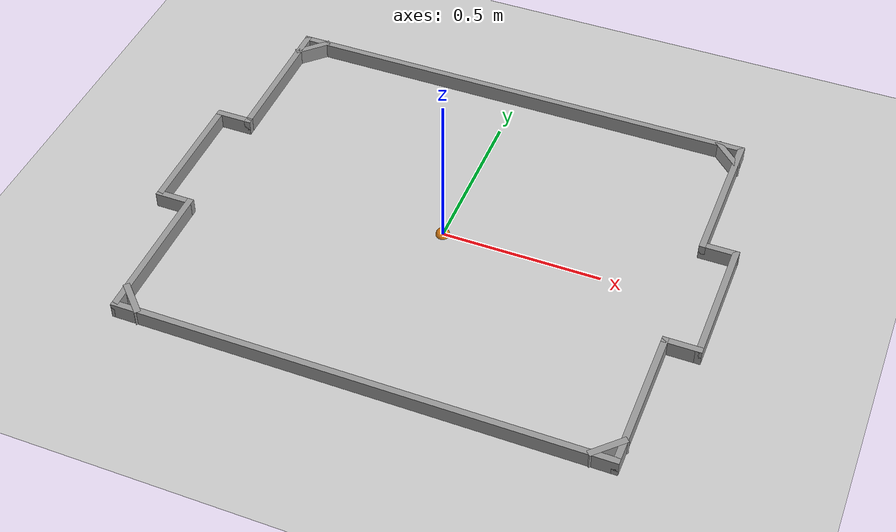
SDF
<?xml version='1.0'?>
<sdf version='1.4'>
  <world name='ieee_very_small_field'>
    <gui fullscreen='0'>
      <camera name='camera'>
        <pose>0 0 4.0 0 1.55 0</pose>
        <view_controller>orbit</view_controller>
      </camera>
    </gui>

    <include>
      <uri>model://sun</uri>
    </include>

    <include>
      <uri>model://ground_plane</uri>
    </include>

    <model name='ball'>
      <static>false</static>
      <pose>-0 0 0 0 0 0</pose>
      <link name='ball_link'>
        <collision name='ball_collision'>
          <geometry>
            <sphere>
              <radius>0.02135</radius>
            </sphere>
          </geometry>
        </collision>
        <visual name='ball_visual'>
          <geometry>
            <sphere>
              <radius>0.02135</radius>
            </sphere>
          </geometry>
          <material>
            <script>
              <uri>file://media/materials/scripts/gazebo.material</uri>
              <name>Gazebo/Orange</name>
            </script>
          </material>
        </visual>
        <inertial>
          <mass>0.046</mass>
          <inertia>
            <ixx>8.3e-6</ixx>
            <iyy>8.3e-6</iyy>
            <izz>8.3e-6</izz>
          </inertia>
        </inertial>
      </link>
    </model>

    <model name='field_walls'>
      <link name='Wall_11'>
        <collision name='Wall_11_Collision'>
          <geometry>
            <box>
              <size>0.47 0.02 0.05</size>
            </box>
          </geometry>
          <pose>0 0 0.025 0 -0 0</pose>
        </collision>
        <visual name='Wall_11_Visual'>
          <pose>0 0 0.025 0 -0 0</pose>
          <geometry>
            <box>
              <size>0.47 0.02 0.05</size>
            </box>
          </geometry>
          <material>
            <script>
              <uri>file://media/materials/scripts/gazebo.material</uri>
              <name>Gazebo/Grey</name>
            </script>
          </material>
        </visual>
        <velocity_decay>
          <linear>0</linear>
          <angular>0</angular>
        </velocity_decay>
        <pose>0.75 -0.425 0 0 -0 1.5708</pose>
      </link>
      <link name='Wall_13'>
        <collision name='Wall_13_Collision'>
          <geometry>
            <box>
              <size>0.118995 0.02 0.05</size>
            </box>
          </geometry>
          <pose>0 0 0.025 0 -0 0</pose>
        </collision>
        <visual name='Wall_13_Visual'>
          <pose>0 0 0.025 0 -0 0</pose>
          <geometry>
            <box>
              <size>0.118995 0.02 0.05</size>
            </box>
          </geometry>
          <material>
            <script>
              <uri>file://media/materials/scripts/gazebo.material</uri>
              <name>Gazebo/Grey</name>
            </script>
          </material>
        </visual>
        <velocity_decay>
          <linear>0</linear>
          <angular>0</angular>
        </velocity_decay>
        <pose>-0.715 0.615 0 0 -0 0.785398</pose>
      </link>
      <link name='Wall_15'>
        <collision name='Wall_15_Collision'>
          <geometry>
            <box>
              <size>0.118995 0.02 0.05</size>
            </box>
          </geometry>
          <pose>0 0 0.025 0 -0 0</pose>
        </collision>
        <visual name='Wall_15_Visual'>
          <pose>0 0 0.025 0 -0 0</pose>
          <geometry>
            <box>
              <size>0.118995 0.02 0.05</size>
            </box>
          </geometry>
          <material>
            <script>
              <uri>file://media/materials/scripts/gazebo.material</uri>
              <name>Gazebo/Grey</name>
            </script>
          </material>
        </visual>
        <velocity_decay>
          <linear>0</linear>
          <angular>0</angular>
        </velocity_decay>
        <pose>-0.715 -0.615 0 0 0 -0.785398</pose>
      </link>
      <link name='Wall_17'>
        <collision name='Wall_17_Collision'>
          <geometry>
            <box>
              <size>0.118995 0.02 0.05</size>
            </box>
          </geometry>
          <pose>0 0 0.025 0 -0 0</pose>
        </collision>
        <visual name='Wall_17_Visual'>
          <pose>0 0 0.025 0 -0 0</pose>
          <geometry>
            <box>
              <size>0.118995 0.02 0.05</size>
            </box>
          </geometry>
          <material>
            <script>
              <uri>file://media/materials/scripts/gazebo.material</uri>
              <name>Gazebo/Grey</name>
            </script>
          </material>
        </visual>
        <velocity_decay>
          <linear>0</linear>
          <angular>0</angular>
        </velocity_decay>
        <pose>0.715 -0.615 0 0 -0 0.785398</pose>
      </link>
      <link name='Wall_19'>
        <collision name='Wall_19_Collision'>
          <geometry>
            <box>
              <size>0.118995 0.02 0.05</size>
            </box>
          </geometry>
          <pose>0 0 0.025 0 -0 0</pose>
        </collision>
        <visual name='Wall_19_Visual'>
          <pose>0 0 0.025 0 -0 0</pose>
          <geometry>
            <box>
              <size>0.118995 0.02 0.05</size>
            </box>
          </geometry>
          <material>
            <script>
              <uri>file://media/materials/scripts/gazebo.material</uri>
              <name>Gazebo/Grey</name>
            </script>
          </material>
        </visual>
        <velocity_decay>
          <linear>0</linear>
          <angular>0</angular>
        </velocity_decay>
        <pose>0.715 0.615 0 0 0 -0.785398</pose>
      </link>
      <link name='Wall_21'>
        <collision name='Wall_21_Collision'>
          <geometry>
            <box>
              <size>0.42 0.02 0.05</size>
            </box>
          </geometry>
          <pose>0 0 0.025 0 -0 0</pose>
        </collision>
        <visual name='Wall_21_Visual'>
          <pose>0 0 0.025 0 -0 0</pose>
          <geometry>
            <box>
              <size>0.42 0.02 0.05</size>
            </box>
          </geometry>
          <material>
            <script>
              <uri>file://media/materials/scripts/gazebo.material</uri>
              <name>Gazebo/Grey</name>
            </script>
          </material>
        </visual>
        <velocity_decay>
          <linear>0</linear>
          <angular>0</angular>
        </velocity_decay>
        <pose>-0.85 0 0 0 -0 1.5708</pose>
      </link>
      <link name='Wall_23'>
        <collision name='Wall_23_Collision'>
          <geometry>
            <box>
              <size>0.12 0.02 0.05</size>
            </box>
          </geometry>
          <pose>0 0 0.025 0 -0 0</pose>
        </collision>
        <visual name='Wall_23_Visual'>
          <pose>0 0 0.025 0 -0 0</pose>
          <geometry>
            <box>
              <size>0.12 0.02 0.05</size>
            </box>
          </geometry>
          <material>
            <script>
              <uri>file://media/materials/scripts/gazebo.material</uri>
              <name>Gazebo/Grey</name>
            </script>
          </material>
        </visual>
        <velocity_decay>
          <linear>0</linear>
          <angular>0</angular>
        </velocity_decay>
        <pose>-0.8 -0.2 0 0 -0 0</pose>
      </link>
      <link name='Wall_25'>
        <collision name='Wall_25_Collision'>
          <geometry>
            <box>
              <size>0.12 0.02 0.05</size>
            </box>
          </geometry>
          <pose>0 0 0.025 0 -0 0</pose>
        </collision>
        <visual name='Wall_25_Visual'>
          <pose>0 0 0.025 0 -0 0</pose>
          <geometry>
            <box>
              <size>0.12 0.02 0.05</size>
            </box>
          </geometry>
          <material>
            <script>
              <uri>file://media/materials/scripts/gazebo.material</uri>
              <name>Gazebo/Grey</name>
            </script>
          </material>
        </visual>
        <velocity_decay>
          <linear>0</linear>
          <angular>0</angular>
        </velocity_decay>
        <pose>-0.8 0.2 0 0 -0 0</pose>
      </link>
      <link name='Wall_27'>
        <collision name='Wall_27_Collision'>
          <geometry>
            <box>
              <size>0.42 0.02 0.05</size>
            </box>
          </geometry>
          <pose>0 0 0.025 0 -0 0</pose>
        </collision>
        <visual name='Wall_27_Visual'>
          <pose>0 0 0.025 0 -0 0</pose>
          <geometry>
            <box>
              <size>0.42 0.02 0.05</size>
            </box>
          </geometry>
          <material>
            <script>
              <uri>file://media/materials/scripts/gazebo.material</uri>
              <name>Gazebo/Grey</name>
            </script>
          </material>
        </visual>
        <velocity_decay>
          <linear>0</linear>
          <angular>0</angular>
        </velocity_decay>
        <pose>0.85 0 0 0 -0 1.5708</pose>
      </link>
      <link name='Wall_29'>
        <collision name='Wall_29_Collision'>
          <geometry>
            <box>
              <size>0.12 0.02 0.05</size>
            </box>
          </geometry>
          <pose>0 0 0.025 0 -0 0</pose>
        </collision>
        <visual name='Wall_29_Visual'>
          <pose>0 0 0.025 0 -0 0</pose>
          <geometry>
            <box>
              <size>0.12 0.02 0.05</size>
            </box>
          </geometry>
          <material>
            <script>
              <uri>file://media/materials/scripts/gazebo.material</uri>
              <name>Gazebo/Grey</name>
            </script>
          </material>
        </visual>
        <velocity_decay>
          <linear>0</linear>
          <angular>0</angular>
        </velocity_decay>
        <pose>0.8 0.2 0 0 -0 0</pose>
      </link>
      <link name='Wall_32'>
        <collision name='Wall_32_Collision'>
          <geometry>
            <box>
              <size>0.12 0.02 0.05</size>
            </box>
          </geometry>
          <pose>0 0 0.025 0 -0 0</pose>
        </collision>
        <visual name='Wall_32_Visual'>
          <pose>0 0 0.025 0 -0 0</pose>
          <geometry>
            <box>
              <size>0.12 0.02 0.05</size>
            </box>
          </geometry>
          <material>
            <script>
              <uri>file://media/materials/scripts/gazebo.material</uri>
              <name>Gazebo/Grey</name>
            </script>
          </material>
        </visual>
        <velocity_decay>
          <linear>0</linear>
          <angular>0</angular>
        </velocity_decay>
        <pose>0.8 -0.2 0 0 -0 0</pose>
      </link>
      <link name='Wall_34'>
        <collision name='Wall_34_Collision'>
          <geometry>
            <box>
              <size>0.47 0.02 0.05</size>
            </box>
          </geometry>
          <pose>0 0 0.025 0 -0 0</pose>
        </collision>
        <visual name='Wall_34_Visual'>
          <pose>0 0 0.025 0 -0 0</pose>
          <geometry>
            <box>
              <size>0.47 0.02 0.05</size>
            </box>
          </geometry>
          <material>
            <script>
              <uri>file://media/materials/scripts/gazebo.material</uri>
              <name>Gazebo/Grey</name>
            </script>
          </material>
        </visual>
        <velocity_decay>
          <linear>0</linear>
          <angular>0</angular>
        </velocity_decay>
        <pose>-0.75 0.425 0 0 0 -1.5708</pose>
      </link>
      <link name='Wall_36'>
        <collision name='Wall_36_Collision'>
          <geometry>
            <box>
              <size>0.47 0.02 0.05</size>
            </box>
          </geometry>
          <pose>0 0 0.025 0 -0 0</pose>
        </collision>
        <visual name='Wall_36_Visual'>
          <pose>0 0 0.025 0 -0 0</pose>
          <geometry>
            <box>
              <size>0.47 0.02 0.05</size>
            </box>
          </geometry>
          <material>
            <script>
              <uri>file://media/materials/scripts/gazebo.material</uri>
              <name>Gazebo/Grey</name>
            </script>
          </material>
        </visual>
        <velocity_decay>
          <linear>0</linear>
          <angular>0</angular>
        </velocity_decay>
        <pose>0.75 0.425 0 0 0 -1.5708</pose>
      </link>
      <link name='Wall_5'>
        <collision name='Wall_5_Collision'>
          <geometry>
            <box>
              <size>1.52 0.02 0.05</size>
            </box>
          </geometry>
          <pose>0 0 0.025 0 -0 0</pose>
        </collision>
        <visual name='Wall_5_Visual'>
          <pose>0 0 0.025 0 -0 0</pose>
          <geometry>
            <box>
              <size>1.52 0.02 0.05</size>
            </box>
          </geometry>
          <material>
            <script>
              <uri>file://media/materials/scripts/gazebo.material</uri>
              <name>Gazebo/Grey</name>
            </script>
          </material>
        </visual>
        <velocity_decay>
          <linear>0</linear>
          <angular>0</angular>
        </velocity_decay>
        <pose>0 -0.65 0 0 -0 0</pose>
      </link>
      <link name='Wall_7'>
        <collision name='Wall_7_Collision'>
          <geometry>
            <box>
              <size>1.52 0.02 0.05</size>
            </box>
          </geometry>
          <pose>0 0 0.025 0 -0 0</pose>
        </collision>
        <visual name='Wall_7_Visual'>
          <pose>0 0 0.025 0 -0 0</pose>
          <geometry>
            <box>
              <size>1.52 0.02 0.05</size>
            </box>
          </geometry>
          <material>
            <script>
              <uri>file://media/materials/scripts/gazebo.material</uri>
              <name>Gazebo/Grey</name>
            </script>
          </material>
        </visual>
        <velocity_decay>
          <linear>0</linear>
          <angular>0</angular>
        </velocity_decay>
        <pose>-0 0.65 0 0 -0 0</pose>
      </link>
      <link name='Wall_9'>
        <collision name='Wall_9_Collision'>
          <geometry>
            <box>
              <size>0.47 0.02 0.05</size>
            </box>
          </geometry>
          <pose>0 0 0.025 0 -0 0</pose>
        </collision>
        <visual name='Wall_9_Visual'>
          <pose>0 0 0.025 0 -0 0</pose>
          <geometry>
            <box>
              <size>0.47 0.02 0.05</size>
            </box>
          </geometry>
          <material>
            <script>
              <uri>file://media/materials/scripts/gazebo.material</uri>
              <name>Gazebo/Grey</name>
            </script>
          </material>
        </visual>
        <velocity_decay>
          <linear>0</linear>
          <angular>0</angular>
        </velocity_decay>
        <pose>-0.75 -0.425 0 0 -0 1.5708</pose>
      </link>
      <static>1</static>
    </model>
  </world>
</sdf>
